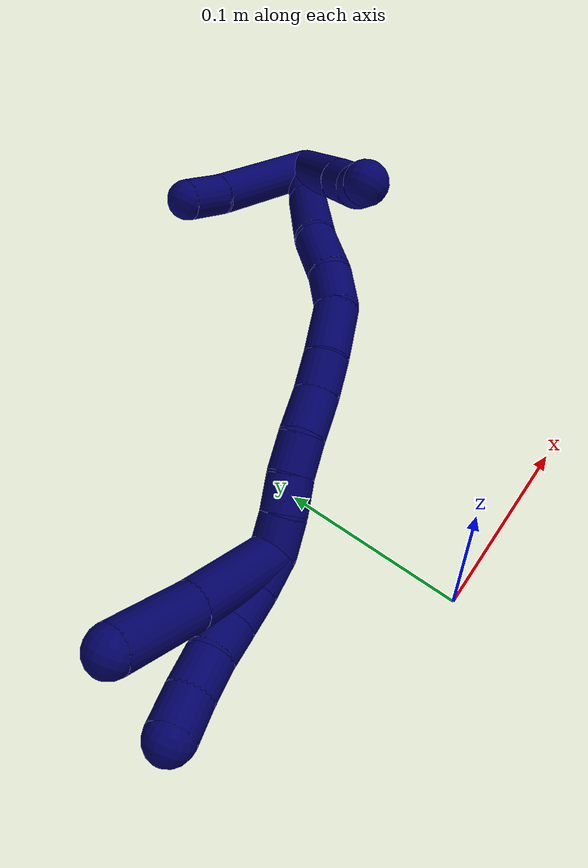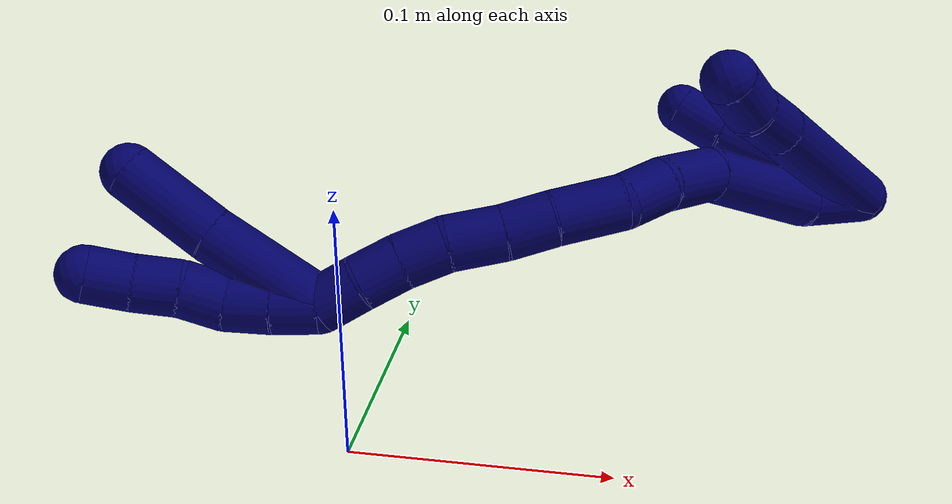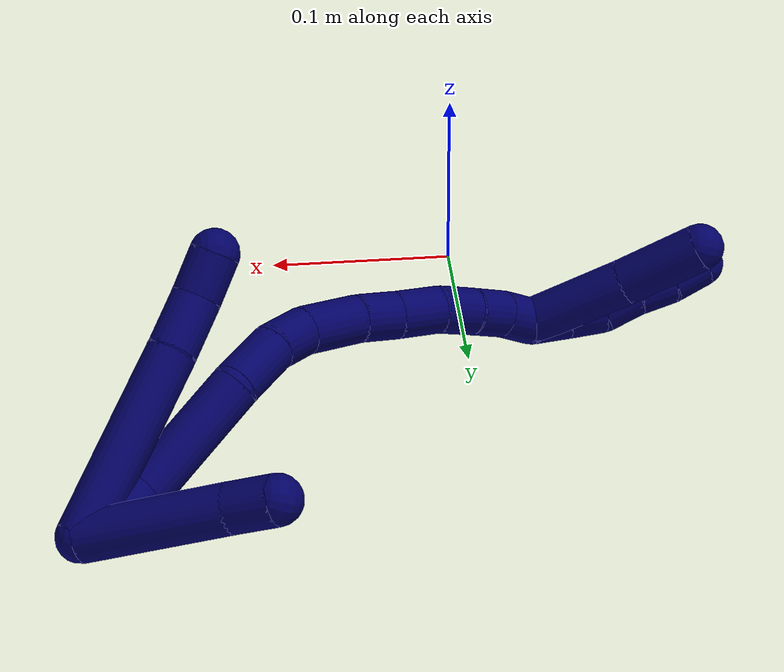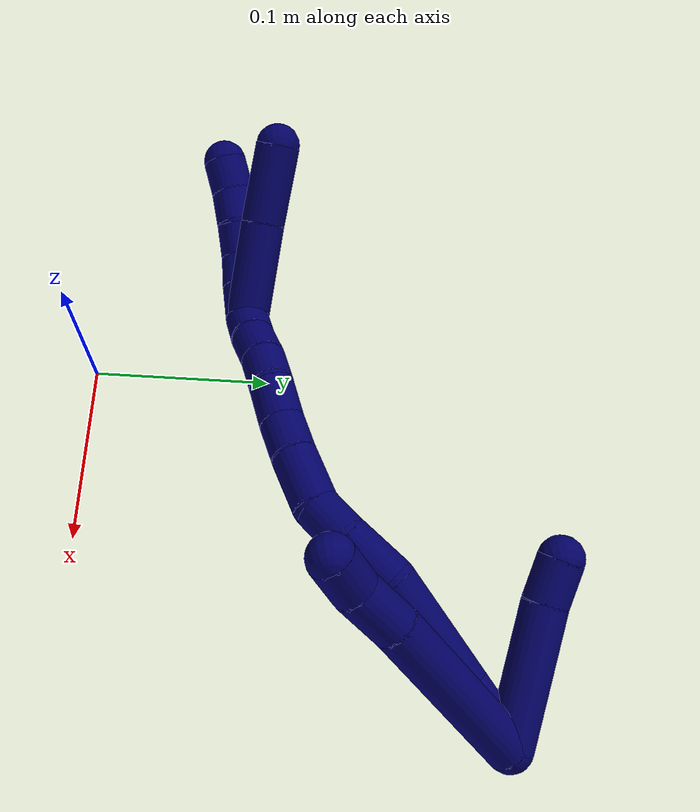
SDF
<sdf version="1.7">
 <world name="default">
  <model name="7">
   <static>0</static>
   <link name="7">
    <collision name="collision-cylinder-e_1_2_8">
     <pose>-0.045902 0.010496 -0.012797 -2.4547 -1.22474 2.19978</pose>
     <geometry><cylinder><radius>0.0125</radius><length>0.09759</length></cylinder></geometry>
     <surface>
      <friction><ode><mu>1.16</mu><mu2>1.16</mu2><slip1>0</slip1><slip2>0</slip2></ode></friction>
      <contact><ode><kp>1e+06</kp><kd>1</kd><max_vel>0</max_vel><min_depth>0.001</min_depth></ode></contact>
     </surface>
    </collision>
    <visual name="visual-cylinder-e_1_2_8">
     <pose>-0.045902 0.010496 -0.012797 -2.4547 -1.22474 2.19978</pose>
     <geometry><cylinder><radius>0.0125</radius><length>0.09759</length></cylinder></geometry>
     <material><ambient>0.003922 0 0.403922 1</ambient></material>
    </visual>
    <collision name="collision-cylinder-e_2_8_9">
     <pose>-0.105733 0.022974 -0.029343 -2.6551 -1.27526 2.49516</pose>
     <geometry><cylinder><radius>0.0125</radius><length>0.029119</length></cylinder></geometry>
     <surface>
      <friction><ode><mu>1.16</mu><mu2>1.16</mu2><slip1>0</slip1><slip2>0</slip2></ode></friction>
      <contact><ode><kp>1e+06</kp><kd>1</kd><max_vel>0</max_vel><min_depth>0.001</min_depth></ode></contact>
     </surface>
    </collision>
    <visual name="visual-cylinder-e_2_8_9">
     <pose>-0.105733 0.022974 -0.029343 -2.6551 -1.27526 2.49516</pose>
     <geometry><cylinder><radius>0.0125</radius><length>0.029119</length></cylinder></geometry>
     <material><ambient>0.003922 0 0.403922 1</ambient></material>
    </visual>
    <collision name="collision-cylinder-e_3_9_6">
     <pose>-0.130367 0.029187 -0.034856 -1.96592 -1.16626 1.56058</pose>
     <geometry><cylinder><radius>0.0125</radius><length>0.02329</length></cylinder></geometry>
     <surface>
      <friction><ode><mu>1.16</mu><mu2>1.16</mu2><slip1>0</slip1><slip2>0</slip2></ode></friction>
      <contact><ode><kp>1e+06</kp><kd>1</kd><max_vel>0</max_vel><min_depth>0.001</min_depth></ode></contact>
     </surface>
    </collision>
    <visual name="visual-cylinder-e_3_9_6">
     <pose>-0.130367 0.029187 -0.034856 -1.96592 -1.16626 1.56058</pose>
     <geometry><cylinder><radius>0.0125</radius><length>0.02329</length></cylinder></geometry>
     <material><ambient>0.003922 0 0.403922 1</ambient></material>
    </visual>
    <collision name="collision-cylinder-e_1_2_10">
     <pose>-0.007114 0.026669 -0.025957 -2.34266 -0.188883 0.441441</pose>
     <geometry><cylinder><radius>0.0125</radius><length>0.075779</length></cylinder></geometry>
     <surface>
      <friction><ode><mu>1.16</mu><mu2>1.16</mu2><slip1>0</slip1><slip2>0</slip2></ode></friction>
      <contact><ode><kp>1e+06</kp><kd>1</kd><max_vel>0</max_vel><min_depth>0.001</min_depth></ode></contact>
     </surface>
    </collision>
    <visual name="visual-cylinder-e_1_2_10">
     <pose>-0.007114 0.026669 -0.025957 -2.34266 -0.188883 0.441441</pose>
     <geometry><cylinder><radius>0.0125</radius><length>0.075779</length></cylinder></geometry>
     <material><ambient>0.003922 0 0.403922 1</ambient></material>
    </visual>
    <collision name="collision-cylinder-e_2_10_5">
     <pose>-0.015923 0.062742 -0.059354 -2.24014 -0.14037 0.288511</pose>
     <geometry><cylinder><radius>0.0125</radius><length>0.024221</length></cylinder></geometry>
     <surface>
      <friction><ode><mu>1.16</mu><mu2>1.16</mu2><slip1>0</slip1><slip2>0</slip2></ode></friction>
      <contact><ode><kp>1e+06</kp><kd>1</kd><max_vel>0</max_vel><min_depth>0.001</min_depth></ode></contact>
     </surface>
    </collision>
    <visual name="visual-cylinder-e_2_10_5">
     <pose>-0.015923 0.062742 -0.059354 -2.24014 -0.14037 0.288511</pose>
     <geometry><cylinder><radius>0.0125</radius><length>0.024221</length></cylinder></geometry>
     <material><ambient>0.003922 0 0.403922 1</ambient></material>
    </visual>
    <collision name="collision-cylinder-e_1_2_11">
     <pose>-0.013512 0.000972 -0.013677 -3.07067 -0.778084 2.96894</pose>
     <geometry><cylinder><radius>0.0125</radius><length>0.038501</length></cylinder></geometry>
     <surface>
      <friction><ode><mu>1.16</mu><mu2>1.16</mu2><slip1>0</slip1><slip2>0</slip2></ode></friction>
      <contact><ode><kp>1e+06</kp><kd>1</kd><max_vel>0</max_vel><min_depth>0.001</min_depth></ode></contact>
     </surface>
    </collision>
    <visual name="visual-cylinder-e_1_2_11">
     <pose>-0.013512 0.000972 -0.013677 -3.07067 -0.778084 2.96894</pose>
     <geometry><cylinder><radius>0.0125</radius><length>0.038501</length></cylinder></geometry>
     <material><ambient>0.003922 0 0.403922 1</ambient></material>
    </visual>
    <collision name="collision-cylinder-e_2_11_12">
     <pose>-0.055305 0.008549 -0.044617 -2.77615 -0.991901 2.48339</pose>
     <geometry><cylinder><radius>0.0125</radius><length>0.067571</length></cylinder></geometry>
     <surface>
      <friction><ode><mu>1.16</mu><mu2>1.16</mu2><slip1>0</slip1><slip2>0</slip2></ode></friction>
      <contact><ode><kp>1e+06</kp><kd>1</kd><max_vel>0</max_vel><min_depth>0.001</min_depth></ode></contact>
     </surface>
    </collision>
    <visual name="visual-cylinder-e_2_11_12">
     <pose>-0.055305 0.008549 -0.044617 -2.77615 -0.991901 2.48339</pose>
     <geometry><cylinder><radius>0.0125</radius><length>0.067571</length></cylinder></geometry>
     <material><ambient>0.003922 0 0.403922 1</ambient></material>
    </visual>
    <collision name="collision-cylinder-e_3_12_13">
     <pose>-0.096091 0.013153 -0.071418 2.93476 -0.908828 -2.7229</pose>
     <geometry><cylinder><radius>0.0125</radius><length>0.031708</length></cylinder></geometry>
     <surface>
      <friction><ode><mu>1.16</mu><mu2>1.16</mu2><slip1>0</slip1><slip2>0</slip2></ode></friction>
      <contact><ode><kp>1e+06</kp><kd>1</kd><max_vel>0</max_vel><min_depth>0.001</min_depth></ode></contact>
     </surface>
    </collision>
    <visual name="visual-cylinder-e_3_12_13">
     <pose>-0.096091 0.013153 -0.071418 2.93476 -0.908828 -2.7229</pose>
     <geometry><cylinder><radius>0.0125</radius><length>0.031708</length></cylinder></geometry>
     <material><ambient>0.003922 0 0.403922 1</ambient></material>
    </visual>
    <collision name="collision-cylinder-e_4_13_14">
     <pose>-0.115491 0.008677 -0.089701 2.86581 -0.648926 -2.35899</pose>
     <geometry><cylinder><radius>0.0125</radius><length>0.022816</length></cylinder></geometry>
     <surface>
      <friction><ode><mu>1.16</mu><mu2>1.16</mu2><slip1>0</slip1><slip2>0</slip2></ode></friction>
      <contact><ode><kp>1e+06</kp><kd>1</kd><max_vel>0</max_vel><min_depth>0.001</min_depth></ode></contact>
     </surface>
    </collision>
    <visual name="visual-cylinder-e_4_13_14">
     <pose>-0.115491 0.008677 -0.089701 2.86581 -0.648926 -2.35899</pose>
     <geometry><cylinder><radius>0.0125</radius><length>0.022816</length></cylinder></geometry>
     <material><ambient>0.003922 0 0.403922 1</ambient></material>
    </visual>
    <collision name="collision-cylinder-e_5_14_15">
     <pose>-0.128838 0.006588 -0.113013 -3.11508 -0.416915 3.01641</pose>
     <geometry><cylinder><radius>0.0125</radius><length>0.031872</length></cylinder></geometry>
     <surface>
      <friction><ode><mu>1.16</mu><mu2>1.16</mu2><slip1>0</slip1><slip2>0</slip2></ode></friction>
      <contact><ode><kp>1e+06</kp><kd>1</kd><max_vel>0</max_vel><min_depth>0.001</min_depth></ode></contact>
     </surface>
    </collision>
    <visual name="visual-cylinder-e_5_14_15">
     <pose>-0.128838 0.006588 -0.113013 -3.11508 -0.416915 3.01641</pose>
     <geometry><cylinder><radius>0.0125</radius><length>0.031872</length></cylinder></geometry>
     <material><ambient>0.003922 0 0.403922 1</ambient></material>
    </visual>
    <collision name="collision-cylinder-e_6_15_16">
     <pose>-0.138584 0.007025 -0.138057 -3.13671 -0.304457 3.10978</pose>
     <geometry><cylinder><radius>0.0125</radius><length>0.021967</length></cylinder></geometry>
     <surface>
      <friction><ode><mu>1.16</mu><mu2>1.16</mu2><slip1>0</slip1><slip2>0</slip2></ode></friction>
      <contact><ode><kp>1e+06</kp><kd>1</kd><max_vel>0</max_vel><min_depth>0.001</min_depth></ode></contact>
     </surface>
    </collision>
    <visual name="visual-cylinder-e_6_15_16">
     <pose>-0.138584 0.007025 -0.138057 -3.13671 -0.304457 3.10978</pose>
     <geometry><cylinder><radius>0.0125</radius><length>0.021967</length></cylinder></geometry>
     <material><ambient>0.003922 0 0.403922 1</ambient></material>
    </visual>
    <collision name="collision-cylinder-e_7_16_17">
     <pose>-0.14581 0.008268 -0.160208 -3.03986 -0.323408 2.5366</pose>
     <geometry><cylinder><radius>0.0125</radius><length>0.02475</length></cylinder></geometry>
     <surface>
      <friction><ode><mu>1.16</mu><mu2>1.16</mu2><slip1>0</slip1><slip2>0</slip2></ode></friction>
      <contact><ode><kp>1e+06</kp><kd>1</kd><max_vel>0</max_vel><min_depth>0.001</min_depth></ode></contact>
     </surface>
    </collision>
    <visual name="visual-cylinder-e_7_16_17">
     <pose>-0.14581 0.008268 -0.160208 -3.03986 -0.323408 2.5366</pose>
     <geometry><cylinder><radius>0.0125</radius><length>0.02475</length></cylinder></geometry>
     <material><ambient>0.003922 0 0.403922 1</ambient></material>
    </visual>
    <collision name="collision-cylinder-e_8_17_18">
     <pose>-0.15164 0.008924 -0.182075 3.08909 -0.183783 -2.58639</pose>
     <geometry><cylinder><radius>0.0125</radius><length>0.020765</length></cylinder></geometry>
     <surface>
      <friction><ode><mu>1.16</mu><mu2>1.16</mu2><slip1>0</slip1><slip2>0</slip2></ode></friction>
      <contact><ode><kp>1e+06</kp><kd>1</kd><max_vel>0</max_vel><min_depth>0.001</min_depth></ode></contact>
     </surface>
    </collision>
    <visual name="visual-cylinder-e_8_17_18">
     <pose>-0.15164 0.008924 -0.182075 3.08909 -0.183783 -2.58639</pose>
     <geometry><cylinder><radius>0.0125</radius><length>0.020765</length></cylinder></geometry>
     <material><ambient>0.003922 0 0.403922 1</ambient></material>
    </visual>
    <collision name="collision-cylinder-e_9_18_19">
     <pose>-0.155519 0.006725 -0.201947 2.97145 -0.199105 -1.72823</pose>
     <geometry><cylinder><radius>0.0125</radius><length>0.020036</length></cylinder></geometry>
     <surface>
      <friction><ode><mu>1.16</mu><mu2>1.16</mu2><slip1>0</slip1><slip2>0</slip2></ode></friction>
      <contact><ode><kp>1e+06</kp><kd>1</kd><max_vel>0</max_vel><min_depth>0.001</min_depth></ode></contact>
     </surface>
    </collision>
    <visual name="visual-cylinder-e_9_18_19">
     <pose>-0.155519 0.006725 -0.201947 2.97145 -0.199105 -1.72823</pose>
     <geometry><cylinder><radius>0.0125</radius><length>0.020036</length></cylinder></geometry>
     <material><ambient>0.003922 0 0.403922 1</ambient></material>
    </visual>
    <collision name="collision-cylinder-e_10_19_1">
     <pose>-0.158043 0.00354 -0.2215 2.98857 -0.05424 -0.680214</pose>
     <geometry><cylinder><radius>0.0125</radius><length>0.020013</length></cylinder></geometry>
     <surface>
      <friction><ode><mu>1.16</mu><mu2>1.16</mu2><slip1>0</slip1><slip2>0</slip2></ode></friction>
      <contact><ode><kp>1e+06</kp><kd>1</kd><max_vel>0</max_vel><min_depth>0.001</min_depth></ode></contact>
     </surface>
    </collision>
    <visual name="visual-cylinder-e_10_19_1">
     <pose>-0.158043 0.00354 -0.2215 2.98857 -0.05424 -0.680214</pose>
     <geometry><cylinder><radius>0.0125</radius><length>0.020013</length></cylinder></geometry>
     <material><ambient>0.003922 0 0.403922 1</ambient></material>
    </visual>
    <collision name="collision-cylinder-e_1_1_20">
     <pose>-0.161492 0.004845 -0.240516 -2.84154 -0.294886 1.55318</pose>
     <geometry><cylinder><radius>0.0125</radius><length>0.02</length></cylinder></geometry>
     <surface>
      <friction><ode><mu>1.16</mu><mu2>1.16</mu2><slip1>0</slip1><slip2>0</slip2></ode></friction>
      <contact><ode><kp>1e+06</kp><kd>1</kd><max_vel>0</max_vel><min_depth>0.001</min_depth></ode></contact>
     </surface>
    </collision>
    <visual name="visual-cylinder-e_1_1_20">
     <pose>-0.161492 0.004845 -0.240516 -2.84154 -0.294886 1.55318</pose>
     <geometry><cylinder><radius>0.0125</radius><length>0.02</length></cylinder></geometry>
     <material><ambient>0.003922 0 0.403922 1</ambient></material>
    </visual>
    <collision name="collision-cylinder-e_2_20_21">
     <pose>-0.167236 0.011275 -0.258543 -2.75646 -0.287778 1.27814</pose>
     <geometry><cylinder><radius>0.0125</radius><length>0.02</length></cylinder></geometry>
     <surface>
      <friction><ode><mu>1.16</mu><mu2>1.16</mu2><slip1>0</slip1><slip2>0</slip2></ode></friction>
      <contact><ode><kp>1e+06</kp><kd>1</kd><max_vel>0</max_vel><min_depth>0.001</min_depth></ode></contact>
     </surface>
    </collision>
    <visual name="visual-cylinder-e_2_20_21">
     <pose>-0.167236 0.011275 -0.258543 -2.75646 -0.287778 1.27814</pose>
     <geometry><cylinder><radius>0.0125</radius><length>0.02</length></cylinder></geometry>
     <material><ambient>0.003922 0 0.403922 1</ambient></material>
    </visual>
    <collision name="collision-cylinder-e_3_21_22">
     <pose>-0.175146 0.01994 -0.274404 -2.51369 -0.531945 1.3962</pose>
     <geometry><cylinder><radius>0.0125</radius><length>0.02</length></cylinder></geometry>
     <surface>
      <friction><ode><mu>1.16</mu><mu2>1.16</mu2><slip1>0</slip1><slip2>0</slip2></ode></friction>
      <contact><ode><kp>1e+06</kp><kd>1</kd><max_vel>0</max_vel><min_depth>0.001</min_depth></ode></contact>
     </surface>
    </collision>
    <visual name="visual-cylinder-e_3_21_22">
     <pose>-0.175146 0.01994 -0.274404 -2.51369 -0.531945 1.3962</pose>
     <geometry><cylinder><radius>0.0125</radius><length>0.02</length></cylinder></geometry>
     <material><ambient>0.003922 0 0.403922 1</ambient></material>
    </visual>
    <collision name="collision-cylinder-e_4_22_23">
     <pose>-0.184639 0.028637 -0.28958 -2.72452 -0.457827 1.66692</pose>
     <geometry><cylinder><radius>0.0125</radius><length>0.02</length></cylinder></geometry>
     <surface>
      <friction><ode><mu>1.16</mu><mu2>1.16</mu2><slip1>0</slip1><slip2>0</slip2></ode></friction>
      <contact><ode><kp>1e+06</kp><kd>1</kd><max_vel>0</max_vel><min_depth>0.001</min_depth></ode></contact>
     </surface>
    </collision>
    <visual name="visual-cylinder-e_4_22_23">
     <pose>-0.184639 0.028637 -0.28958 -2.72452 -0.457827 1.66692</pose>
     <geometry><cylinder><radius>0.0125</radius><length>0.02</length></cylinder></geometry>
     <material><ambient>0.003922 0 0.403922 1</ambient></material>
    </visual>
    <collision name="collision-cylinder-e_5_23_4">
     <pose>-0.194716 0.036063 -0.305103 -2.66372 -0.601281 1.8097</pose>
     <geometry><cylinder><radius>0.0125</radius><length>0.02</length></cylinder></geometry>
     <surface>
      <friction><ode><mu>1.16</mu><mu2>1.16</mu2><slip1>0</slip1><slip2>0</slip2></ode></friction>
      <contact><ode><kp>1e+06</kp><kd>1</kd><max_vel>0</max_vel><min_depth>0.001</min_depth></ode></contact>
     </surface>
    </collision>
    <visual name="visual-cylinder-e_5_23_4">
     <pose>-0.194716 0.036063 -0.305103 -2.66372 -0.601281 1.8097</pose>
     <geometry><cylinder><radius>0.0125</radius><length>0.02</length></cylinder></geometry>
     <material><ambient>0.003922 0 0.403922 1</ambient></material>
    </visual>
    <collision name="collision-cylinder-e_1_1_24">
     <pose>-0.167811 0.022758 -0.24711 -2.21979 -0.340567 0.666698</pose>
     <geometry><cylinder><radius>0.0125</radius><length>0.055241</length></cylinder></geometry>
     <surface>
      <friction><ode><mu>1.16</mu><mu2>1.16</mu2><slip1>0</slip1><slip2>0</slip2></ode></friction>
      <contact><ode><kp>1e+06</kp><kd>1</kd><max_vel>0</max_vel><min_depth>0.001</min_depth></ode></contact>
     </surface>
    </collision>
    <visual name="visual-cylinder-e_1_1_24">
     <pose>-0.167811 0.022758 -0.24711 -2.21979 -0.340567 0.666698</pose>
     <geometry><cylinder><radius>0.0125</radius><length>0.055241</length></cylinder></geometry>
     <material><ambient>0.003922 0 0.403922 1</ambient></material>
    </visual>
    <collision name="collision-cylinder-e_2_24_3">
     <pose>-0.184486 0.061225 -0.274295 -2.14434 -0.339346 0.609639</pose>
     <geometry><cylinder><radius>0.0125</radius><length>0.044759</length></cylinder></geometry>
     <surface>
      <friction><ode><mu>1.16</mu><mu2>1.16</mu2><slip1>0</slip1><slip2>0</slip2></ode></friction>
      <contact><ode><kp>1e+06</kp><kd>1</kd><max_vel>0</max_vel><min_depth>0.001</min_depth></ode></contact>
     </surface>
    </collision>
    <visual name="visual-cylinder-e_2_24_3">
     <pose>-0.184486 0.061225 -0.274295 -2.14434 -0.339346 0.609639</pose>
     <geometry><cylinder><radius>0.0125</radius><length>0.044759</length></cylinder></geometry>
     <material><ambient>0.003922 0 0.403922 1</ambient></material>
    </visual>
    <collision name="collision-sphere-3">
     <pose>-0.191936 0.078952 -0.285746 0 -0 0</pose>
     <geometry><sphere><radius>0.0125</radius></sphere></geometry>
     <surface>
      <friction><ode><mu>1.16</mu><mu2>1.16</mu2><slip1>0</slip1><slip2>0</slip2></ode></friction>
      <contact><ode><kp>1e+06</kp><kd>1</kd><max_vel>0</max_vel><min_depth>0.001</min_depth></ode></contact>
     </surface>
    </collision>
    <visual name="visual-sphere-3">
     <pose>-0.191936 0.078952 -0.285746 0 -0 0</pose>
     <geometry><sphere><radius>0.0125</radius></sphere></geometry>
     <material><ambient>0.003922 0 0.403922 1</ambient></material>
    </visual>
    <collision name="collision-sphere-24">
     <pose>-0.177037 0.043499 -0.262844 0 -0 0</pose>
     <geometry><sphere><radius>0.0125</radius></sphere></geometry>
     <surface>
      <friction><ode><mu>1.16</mu><mu2>1.16</mu2><slip1>0</slip1><slip2>0</slip2></ode></friction>
      <contact><ode><kp>1e+06</kp><kd>1</kd><max_vel>0</max_vel><min_depth>0.001</min_depth></ode></contact>
     </surface>
    </collision>
    <visual name="visual-sphere-24">
     <pose>-0.177037 0.043499 -0.262844 0 -0 0</pose>
     <geometry><sphere><radius>0.0125</radius></sphere></geometry>
     <material><ambient>0.003922 0 0.403922 1</ambient></material>
    </visual>
    <collision name="collision-sphere-4">
     <pose>-0.200373 0.039855 -0.312426 0 -0 0</pose>
     <geometry><sphere><radius>0.0125</radius></sphere></geometry>
     <surface>
      <friction><ode><mu>1.16</mu><mu2>1.16</mu2><slip1>0</slip1><slip2>0</slip2></ode></friction>
      <contact><ode><kp>1e+06</kp><kd>1</kd><max_vel>0</max_vel><min_depth>0.001</min_depth></ode></contact>
     </surface>
    </collision>
    <visual name="visual-sphere-4">
     <pose>-0.200373 0.039855 -0.312426 0 -0 0</pose>
     <geometry><sphere><radius>0.0125</radius></sphere></geometry>
     <material><ambient>0.003922 0 0.403922 1</ambient></material>
    </visual>
    <collision name="collision-sphere-23">
     <pose>-0.189059 0.03227 -0.297781 0 -0 0</pose>
     <geometry><sphere><radius>0.0125</radius></sphere></geometry>
     <surface>
      <friction><ode><mu>1.16</mu><mu2>1.16</mu2><slip1>0</slip1><slip2>0</slip2></ode></friction>
      <contact><ode><kp>1e+06</kp><kd>1</kd><max_vel>0</max_vel><min_depth>0.001</min_depth></ode></contact>
     </surface>
    </collision>
    <visual name="visual-sphere-23">
     <pose>-0.189059 0.03227 -0.297781 0 -0 0</pose>
     <geometry><sphere><radius>0.0125</radius></sphere></geometry>
     <material><ambient>0.003922 0 0.403922 1</ambient></material>
    </visual>
    <collision name="collision-sphere-22">
     <pose>-0.180219 0.025003 -0.281378 0 -0 0</pose>
     <geometry><sphere><radius>0.0125</radius></sphere></geometry>
     <surface>
      <friction><ode><mu>1.16</mu><mu2>1.16</mu2><slip1>0</slip1><slip2>0</slip2></ode></friction>
      <contact><ode><kp>1e+06</kp><kd>1</kd><max_vel>0</max_vel><min_depth>0.001</min_depth></ode></contact>
     </surface>
    </collision>
    <visual name="visual-sphere-22">
     <pose>-0.180219 0.025003 -0.281378 0 -0 0</pose>
     <geometry><sphere><radius>0.0125</radius></sphere></geometry>
     <material><ambient>0.003922 0 0.403922 1</ambient></material>
    </visual>
    <collision name="collision-sphere-21">
     <pose>-0.170074 0.014877 -0.26743 0 -0 0</pose>
     <geometry><sphere><radius>0.0125</radius></sphere></geometry>
     <surface>
      <friction><ode><mu>1.16</mu><mu2>1.16</mu2><slip1>0</slip1><slip2>0</slip2></ode></friction>
      <contact><ode><kp>1e+06</kp><kd>1</kd><max_vel>0</max_vel><min_depth>0.001</min_depth></ode></contact>
     </surface>
    </collision>
    <visual name="visual-sphere-21">
     <pose>-0.170074 0.014877 -0.26743 0 -0 0</pose>
     <geometry><sphere><radius>0.0125</radius></sphere></geometry>
     <material><ambient>0.003922 0 0.403922 1</ambient></material>
    </visual>
    <collision name="collision-sphere-20">
     <pose>-0.164398 0.007673 -0.249657 0 -0 0</pose>
     <geometry><sphere><radius>0.0125</radius></sphere></geometry>
     <surface>
      <friction><ode><mu>1.16</mu><mu2>1.16</mu2><slip1>0</slip1><slip2>0</slip2></ode></friction>
      <contact><ode><kp>1e+06</kp><kd>1</kd><max_vel>0</max_vel><min_depth>0.001</min_depth></ode></contact>
     </surface>
    </collision>
    <visual name="visual-sphere-20">
     <pose>-0.164398 0.007673 -0.249657 0 -0 0</pose>
     <geometry><sphere><radius>0.0125</radius></sphere></geometry>
     <material><ambient>0.003922 0 0.403922 1</ambient></material>
    </visual>
    <collision name="collision-sphere-5">
     <pose>-0.017617 0.072146 -0.066795 0 -0 0</pose>
     <geometry><sphere><radius>0.0125</radius></sphere></geometry>
     <surface>
      <friction><ode><mu>1.16</mu><mu2>1.16</mu2><slip1>0</slip1><slip2>0</slip2></ode></friction>
      <contact><ode><kp>1e+06</kp><kd>1</kd><max_vel>0</max_vel><min_depth>0.001</min_depth></ode></contact>
     </surface>
    </collision>
    <visual name="visual-sphere-5">
     <pose>-0.017617 0.072146 -0.066795 0 -0 0</pose>
     <geometry><sphere><radius>0.0125</radius></sphere></geometry>
     <material><ambient>0.003922 0 0.403922 1</ambient></material>
    </visual>
    <collision name="collision-sphere-10">
     <pose>-0.014228 0.053338 -0.051914 0 -0 0</pose>
     <geometry><sphere><radius>0.0125</radius></sphere></geometry>
     <surface>
      <friction><ode><mu>1.16</mu><mu2>1.16</mu2><slip1>0</slip1><slip2>0</slip2></ode></friction>
      <contact><ode><kp>1e+06</kp><kd>1</kd><max_vel>0</max_vel><min_depth>0.001</min_depth></ode></contact>
     </surface>
    </collision>
    <visual name="visual-sphere-10">
     <pose>-0.014228 0.053338 -0.051914 0 -0 0</pose>
     <geometry><sphere><radius>0.0125</radius></sphere></geometry>
     <material><ambient>0.003922 0 0.403922 1</ambient></material>
    </visual>
    <collision name="collision-sphere-6">
     <pose>-0.141072 0.033417 -0.036621 0 -0 0</pose>
     <geometry><sphere><radius>0.0125</radius></sphere></geometry>
     <surface>
      <friction><ode><mu>1.16</mu><mu2>1.16</mu2><slip1>0</slip1><slip2>0</slip2></ode></friction>
      <contact><ode><kp>1e+06</kp><kd>1</kd><max_vel>0</max_vel><min_depth>0.001</min_depth></ode></contact>
     </surface>
    </collision>
    <visual name="visual-sphere-6">
     <pose>-0.141072 0.033417 -0.036621 0 -0 0</pose>
     <geometry><sphere><radius>0.0125</radius></sphere></geometry>
     <material><ambient>0.003922 0 0.403922 1</ambient></material>
    </visual>
    <collision name="collision-sphere-9">
     <pose>-0.119662 0.024956 -0.033092 0 -0 0</pose>
     <geometry><sphere><radius>0.0125</radius></sphere></geometry>
     <surface>
      <friction><ode><mu>1.16</mu><mu2>1.16</mu2><slip1>0</slip1><slip2>0</slip2></ode></friction>
      <contact><ode><kp>1e+06</kp><kd>1</kd><max_vel>0</max_vel><min_depth>0.001</min_depth></ode></contact>
     </surface>
    </collision>
    <visual name="visual-sphere-9">
     <pose>-0.119662 0.024956 -0.033092 0 -0 0</pose>
     <geometry><sphere><radius>0.0125</radius></sphere></geometry>
     <material><ambient>0.003922 0 0.403922 1</ambient></material>
    </visual>
    <collision name="collision-sphere-2">
     <geometry><sphere><radius>0.0125</radius></sphere></geometry>
     <surface>
      <friction><ode><mu>1.16</mu><mu2>1.16</mu2><slip1>0</slip1><slip2>0</slip2></ode></friction>
      <contact><ode><kp>1e+06</kp><kd>1</kd><max_vel>0</max_vel><min_depth>0.001</min_depth></ode></contact>
     </surface>
    </collision>
    <visual name="visual-sphere-2">
     <geometry><sphere><radius>0.0125</radius></sphere></geometry>
     <material><ambient>0.003922 0 0.403922 1</ambient></material>
    </visual>
    <collision name="collision-sphere-19">
     <pose>-0.1575 0.005063 -0.211625 0 -0 0</pose>
     <geometry><sphere><radius>0.0125</radius></sphere></geometry>
     <surface>
      <friction><ode><mu>1.16</mu><mu2>1.16</mu2><slip1>0</slip1><slip2>0</slip2></ode></friction>
      <contact><ode><kp>1e+06</kp><kd>1</kd><max_vel>0</max_vel><min_depth>0.001</min_depth></ode></contact>
     </surface>
    </collision>
    <visual name="visual-sphere-19">
     <pose>-0.1575 0.005063 -0.211625 0 -0 0</pose>
     <geometry><sphere><radius>0.0125</radius></sphere></geometry>
     <material><ambient>0.003922 0 0.403922 1</ambient></material>
    </visual>
    <collision name="collision-sphere-8">
     <pose>-0.091805 0.020991 -0.025595 0 -0 0</pose>
     <geometry><sphere><radius>0.0125</radius></sphere></geometry>
     <surface>
      <friction><ode><mu>1.16</mu><mu2>1.16</mu2><slip1>0</slip1><slip2>0</slip2></ode></friction>
      <contact><ode><kp>1e+06</kp><kd>1</kd><max_vel>0</max_vel><min_depth>0.001</min_depth></ode></contact>
     </surface>
    </collision>
    <visual name="visual-sphere-8">
     <pose>-0.091805 0.020991 -0.025595 0 -0 0</pose>
     <geometry><sphere><radius>0.0125</radius></sphere></geometry>
     <material><ambient>0.003922 0 0.403922 1</ambient></material>
    </visual>
    <collision name="collision-sphere-11">
     <pose>-0.027025 0.001943 -0.027354 0 -0 0</pose>
     <geometry><sphere><radius>0.0125</radius></sphere></geometry>
     <surface>
      <friction><ode><mu>1.16</mu><mu2>1.16</mu2><slip1>0</slip1><slip2>0</slip2></ode></friction>
      <contact><ode><kp>1e+06</kp><kd>1</kd><max_vel>0</max_vel><min_depth>0.001</min_depth></ode></contact>
     </surface>
    </collision>
    <visual name="visual-sphere-11">
     <pose>-0.027025 0.001943 -0.027354 0 -0 0</pose>
     <geometry><sphere><radius>0.0125</radius></sphere></geometry>
     <material><ambient>0.003922 0 0.403922 1</ambient></material>
    </visual>
    <collision name="collision-sphere-12">
     <pose>-0.083586 0.015154 -0.061881 0 -0 0</pose>
     <geometry><sphere><radius>0.0125</radius></sphere></geometry>
     <surface>
      <friction><ode><mu>1.16</mu><mu2>1.16</mu2><slip1>0</slip1><slip2>0</slip2></ode></friction>
      <contact><ode><kp>1e+06</kp><kd>1</kd><max_vel>0</max_vel><min_depth>0.001</min_depth></ode></contact>
     </surface>
    </collision>
    <visual name="visual-sphere-12">
     <pose>-0.083586 0.015154 -0.061881 0 -0 0</pose>
     <geometry><sphere><radius>0.0125</radius></sphere></geometry>
     <material><ambient>0.003922 0 0.403922 1</ambient></material>
    </visual>
    <collision name="collision-sphere-13">
     <pose>-0.108597 0.011152 -0.080955 0 -0 0</pose>
     <geometry><sphere><radius>0.0125</radius></sphere></geometry>
     <surface>
      <friction><ode><mu>1.16</mu><mu2>1.16</mu2><slip1>0</slip1><slip2>0</slip2></ode></friction>
      <contact><ode><kp>1e+06</kp><kd>1</kd><max_vel>0</max_vel><min_depth>0.001</min_depth></ode></contact>
     </surface>
    </collision>
    <visual name="visual-sphere-13">
     <pose>-0.108597 0.011152 -0.080955 0 -0 0</pose>
     <geometry><sphere><radius>0.0125</radius></sphere></geometry>
     <material><ambient>0.003922 0 0.403922 1</ambient></material>
    </visual>
    <collision name="collision-sphere-14">
     <pose>-0.122385 0.006202 -0.098447 0 -0 0</pose>
     <geometry><sphere><radius>0.0125</radius></sphere></geometry>
     <surface>
      <friction><ode><mu>1.16</mu><mu2>1.16</mu2><slip1>0</slip1><slip2>0</slip2></ode></friction>
      <contact><ode><kp>1e+06</kp><kd>1</kd><max_vel>0</max_vel><min_depth>0.001</min_depth></ode></contact>
     </surface>
    </collision>
    <visual name="visual-sphere-14">
     <pose>-0.122385 0.006202 -0.098447 0 -0 0</pose>
     <geometry><sphere><radius>0.0125</radius></sphere></geometry>
     <material><ambient>0.003922 0 0.403922 1</ambient></material>
    </visual>
    <collision name="collision-sphere-15">
     <pose>-0.135292 0.006974 -0.127579 0 -0 0</pose>
     <geometry><sphere><radius>0.0125</radius></sphere></geometry>
     <surface>
      <friction><ode><mu>1.16</mu><mu2>1.16</mu2><slip1>0</slip1><slip2>0</slip2></ode></friction>
      <contact><ode><kp>1e+06</kp><kd>1</kd><max_vel>0</max_vel><min_depth>0.001</min_depth></ode></contact>
     </surface>
    </collision>
    <visual name="visual-sphere-15">
     <pose>-0.135292 0.006974 -0.127579 0 -0 0</pose>
     <geometry><sphere><radius>0.0125</radius></sphere></geometry>
     <material><ambient>0.003922 0 0.403922 1</ambient></material>
    </visual>
    <collision name="collision-sphere-16">
     <pose>-0.141877 0.007077 -0.148535 0 -0 0</pose>
     <geometry><sphere><radius>0.0125</radius></sphere></geometry>
     <surface>
      <friction><ode><mu>1.16</mu><mu2>1.16</mu2><slip1>0</slip1><slip2>0</slip2></ode></friction>
      <contact><ode><kp>1e+06</kp><kd>1</kd><max_vel>0</max_vel><min_depth>0.001</min_depth></ode></contact>
     </surface>
    </collision>
    <visual name="visual-sphere-16">
     <pose>-0.141877 0.007077 -0.148535 0 -0 0</pose>
     <geometry><sphere><radius>0.0125</radius></sphere></geometry>
     <material><ambient>0.003922 0 0.403922 1</ambient></material>
    </visual>
    <collision name="collision-sphere-17">
     <pose>-0.149742 0.00946 -0.171881 0 -0 0</pose>
     <geometry><sphere><radius>0.0125</radius></sphere></geometry>
     <surface>
      <friction><ode><mu>1.16</mu><mu2>1.16</mu2><slip1>0</slip1><slip2>0</slip2></ode></friction>
      <contact><ode><kp>1e+06</kp><kd>1</kd><max_vel>0</max_vel><min_depth>0.001</min_depth></ode></contact>
     </surface>
    </collision>
    <visual name="visual-sphere-17">
     <pose>-0.149742 0.00946 -0.171881 0 -0 0</pose>
     <geometry><sphere><radius>0.0125</radius></sphere></geometry>
     <material><ambient>0.003922 0 0.403922 1</ambient></material>
    </visual>
    <collision name="collision-sphere-18">
     <pose>-0.153537 0.008388 -0.192268 0 -0 0</pose>
     <geometry><sphere><radius>0.0125</radius></sphere></geometry>
     <surface>
      <friction><ode><mu>1.16</mu><mu2>1.16</mu2><slip1>0</slip1><slip2>0</slip2></ode></friction>
      <contact><ode><kp>1e+06</kp><kd>1</kd><max_vel>0</max_vel><min_depth>0.001</min_depth></ode></contact>
     </surface>
    </collision>
    <visual name="visual-sphere-18">
     <pose>-0.153537 0.008388 -0.192268 0 -0 0</pose>
     <geometry><sphere><radius>0.0125</radius></sphere></geometry>
     <material><ambient>0.003922 0 0.403922 1</ambient></material>
    </visual>
    <collision name="collision-sphere-1">
     <pose>-0.158585 0.002017 -0.231375 0 -0 0</pose>
     <geometry><sphere><radius>0.0125</radius></sphere></geometry>
     <surface>
      <friction><ode><mu>1.16</mu><mu2>1.16</mu2><slip1>0</slip1><slip2>0</slip2></ode></friction>
      <contact><ode><kp>1e+06</kp><kd>1</kd><max_vel>0</max_vel><min_depth>0.001</min_depth></ode></contact>
     </surface>
    </collision>
    <visual name="visual-sphere-1">
     <pose>-0.158585 0.002017 -0.231375 0 -0 0</pose>
     <geometry><sphere><radius>0.0125</radius></sphere></geometry>
     <material><ambient>0.003922 0 0.403922 1</ambient></material>
    </visual>
    <inertial>
     <pose>-0.102451 0.018822 -0.12043 0 -0 0</pose>
     <mass>0.75</mass>
     <inertia><ixx>5e-05</ixx><ixy>0</ixy><ixz>0</ixz><iyy>0.000182</iyy><iyz>0</iyz><izz>2.5e-05</izz></inertia>
    </inertial>
   </link>
   <pose>0.19932 0.239352 0.0117 1.03174 0.638603 1.3712</pose>
  </model>
 </world>
</sdf>
